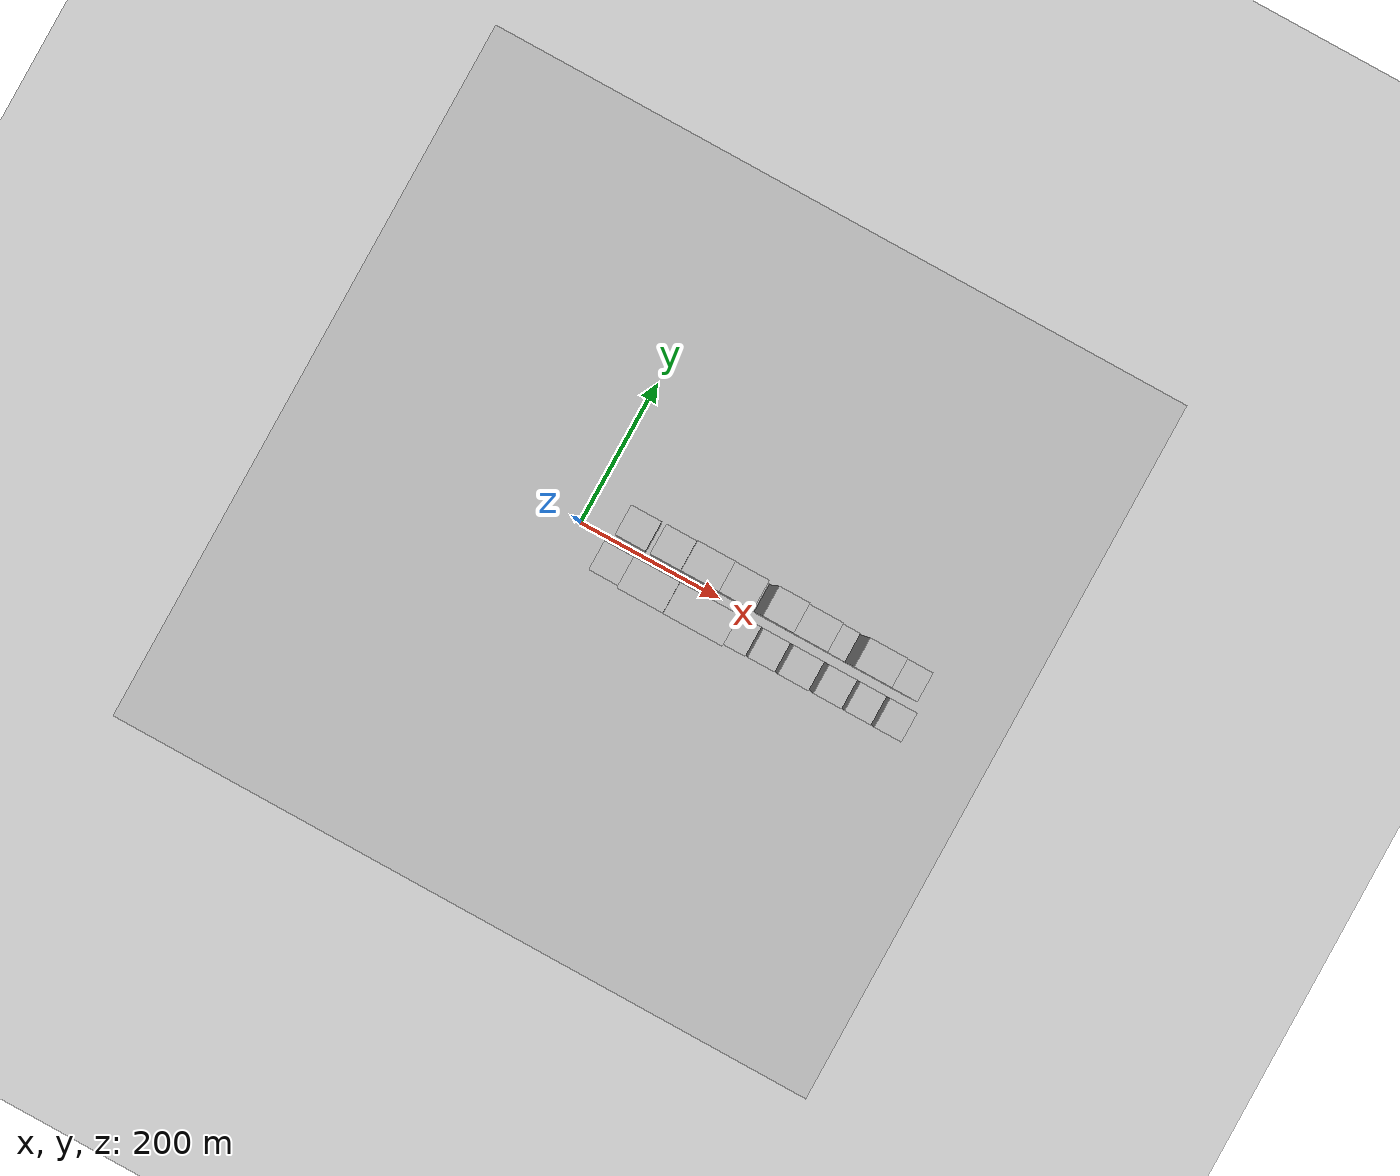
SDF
<?xml version="1.0" encoding="utf-8"?>

<sdf version="1.6">

   <world name="default">

      <gui fullscreen="0">

         <camera name="user_camera">

            <pose>-15 0 4.57585 0 0 0</pose>

            <view_controller>orbit</view_controller>

         </camera>

      </gui>

      <scene>

         <sky>

           <clouds>

             <speed>12</speed>

           </clouds>

         </sky>

         <ambient>0.4 0.4 0.4 1</ambient>

         <background>0.7 0.7 0.7 1</background>

         <shadows>1</shadows>

      </scene>

      <gravity>0 0 -9.8066</gravity>

      <magnetic_field>6e-06 2.3e-05 -4.2e-05</magnetic_field>

      <physics default="0" name="default_physics" type="ode">

         <ode>

            <solver>

               <type>quick</type>

               <iters>10</iters>

               <sor>1.0</sor>

               <use_dynamic_moi_rescaling>0</use_dynamic_moi_rescaling>

            </solver>

            <constraints>

               <cfm>0</cfm>

               <erp>0.2</erp>

               <contact_max_correcting_vel>100</contact_max_correcting_vel>

               <contact_surface_layer>0.001</contact_surface_layer>

            </constraints>

         </ode>

         <max_step_size>0.004</max_step_size>

         <real_time_factor>1</real_time_factor>

         <real_time_update_rate>250</real_time_update_rate>

      </physics>

      <light name="sun" type="directional">

         <cast_shadows>1</cast_shadows>

         <pose>0 0 10 0 0 0</pose>

         <diffuse>0.8 0.8 0.8 1</diffuse>

         <specular>0.2 0.2 0.2 1</specular>

         <attenuation>

            <range>1000</range>

            <constant>0.9</constant>

            <linear>0.01</linear>

            <quadratic>0.001</quadratic>

         </attenuation>

         <direction>-0.5 0.1 -0.9</direction>

      </light>

      <include>

         <name>ground_plane_1</name>

         <uri>model://HANNAS_ground_plane</uri>

         <pose>0 0 0  0 0 0</pose>

      </include>

      <include>

         <name>ground_plane_2</name>

         <uri>model://HANNAS_ground_plane</uri>

         <pose>100 0 0  0 0 0</pose>

      </include>

      <model name="building_1">

         <static>1</static>

         <pose frame="">69.5498 26.0000 0 0.000000 0.000000 1.570796</pose>

         <link name="link">

            <pose frame="">0 0 58.50 0 0 0</pose>

            <collision name="collision">

               <geometry>

                  <box>

                     <size>40.0000 41.0997 117.0000</size>

                  </box>

               </geometry>

               <max_contacts>10</max_contacts>

               <surface>

                  <contact>

                     <ode/>

                  </contact>

                  <bounce/>

                  <friction>

                     <torsional>

                        <ode/>

                     </torsional>

                     <ode/>

                  </friction>

               </surface>

            </collision>

            <visual name="visual">

               <cast_shadows>0</cast_shadows>

               <geometry>

                  <box>

                     <size>40.0000 41.0997 117.0000</size>

                  </box>

               </geometry>

               <material>

                  <script>

                     <uri>model://HANNAS_wall/materials/scripts</uri>

                     <uri>model://HANNAS_wall/materials/textures</uri>

                     <name>vrc/HANNAS_wall</name>

                  </script>

               </material>

            </visual>

            <self_collide>0</self_collide>

            <enable_wind>0</enable_wind>

            <kinematic>0</kinematic>

         </link>

      </model>

      <model name="building_2">

         <static>1</static>

         <pose frame="">116.6021 26.0000 0 0.000000 0.000000 1.570796</pose>

         <link name="link">

            <pose frame="">0 0 61.50 0 0 0</pose>

            <collision name="collision">

               <geometry>

                  <box>

                     <size>40.0000 41.0049 123.0000</size>

                  </box>

               </geometry>

               <max_contacts>10</max_contacts>

               <surface>

                  <contact>

                     <ode/>

                  </contact>

                  <bounce/>

                  <friction>

                     <torsional>

                        <ode/>

                     </torsional>

                     <ode/>

                  </friction>

               </surface>

            </collision>

            <visual name="visual">

               <cast_shadows>0</cast_shadows>

               <geometry>

                  <box>

                     <size>40.0000 41.0049 123.0000</size>

                  </box>

               </geometry>

               <material>

                  <script>

                     <uri>model://HANNAS_wall/materials/scripts</uri>

                     <uri>model://HANNAS_wall/materials/textures</uri>

                     <name>vrc/HANNAS_wall</name>

                  </script>

               </material>

            </visual>

            <self_collide>0</self_collide>

            <enable_wind>0</enable_wind>

            <kinematic>0</kinematic>

         </link>

      </model>

      <model name="building_3">

         <static>1</static>

         <pose frame="">162.0072 26.0000 0 0.000000 0.000000 1.570796</pose>

         <link name="link">

            <pose frame="">0 0 73.50 0 0 0</pose>

            <collision name="collision">

               <geometry>

                  <box>

                     <size>40.0000 49.8053 147.0000</size>

                  </box>

               </geometry>

               <max_contacts>10</max_contacts>

               <surface>

                  <contact>

                     <ode/>

                  </contact>

                  <bounce/>

                  <friction>

                     <torsional>

                        <ode/>

                     </torsional>

                     <ode/>

                  </friction>

               </surface>

            </collision>

            <visual name="visual">

               <cast_shadows>0</cast_shadows>

               <geometry>

                  <box>

                     <size>40.0000 49.8053 147.0000</size>

                  </box>

               </geometry>

               <material>

                  <script>

                     <uri>model://HANNAS_wall/materials/scripts</uri>

                     <uri>model://HANNAS_wall/materials/textures</uri>

                     <name>vrc/HANNAS_wall</name>

                  </script>

               </material>

            </visual>

            <self_collide>0</self_collide>

            <enable_wind>0</enable_wind>

            <kinematic>0</kinematic>

         </link>

      </model>

      <model name="building_4">

         <static>1</static>

         <pose frame="">209.6434 26.0000 0 0.000000 0.000000 1.570796</pose>

         <link name="link">

            <pose frame="">0 0 69.00 0 0 0</pose>

            <collision name="collision">

               <geometry>

                  <box>

                     <size>40.0000 45.4671 138.0000</size>

                  </box>

               </geometry>

               <max_contacts>10</max_contacts>

               <surface>

                  <contact>

                     <ode/>

                  </contact>

                  <bounce/>

                  <friction>

                     <torsional>

                        <ode/>

                     </torsional>

                     <ode/>

                  </friction>

               </surface>

            </collision>

            <visual name="visual">

               <cast_shadows>0</cast_shadows>

               <geometry>

                  <box>

                     <size>40.0000 45.4671 138.0000</size>

                  </box>

               </geometry>

               <material>

                  <script>

                     <uri>model://HANNAS_wall/materials/scripts</uri>

                     <uri>model://HANNAS_wall/materials/textures</uri>

                     <name>vrc/HANNAS_wall</name>

                  </script>

               </material>

            </visual>

            <self_collide>0</self_collide>

            <enable_wind>0</enable_wind>

            <kinematic>0</kinematic>

         </link>

      </model>

      <model name="building_5">

         <static>1</static>

         <pose frame="">237.8168 26.0000 0 0.000000 0.000000 1.570796</pose>

         <link name="link">

            <pose frame="">0 0 13.50 0 0 0</pose>

            <collision name="collision">

               <geometry>

                  <box>

                     <size>40.0000 10.8796 27.0000</size>

                  </box>

               </geometry>

               <max_contacts>10</max_contacts>

               <surface>

                  <contact>

                     <ode/>

                  </contact>

                  <bounce/>

                  <friction>

                     <torsional>

                        <ode/>

                     </torsional>

                     <ode/>

                  </friction>

               </surface>

            </collision>

            <visual name="visual">

               <cast_shadows>0</cast_shadows>

               <geometry>

                  <box>

                     <size>40.0000 10.8796 27.0000</size>

                  </box>

               </geometry>

               <material>

                  <script>

                     <uri>model://HANNAS_wall/materials/scripts</uri>

                     <uri>model://HANNAS_wall/materials/textures</uri>

                     <name>vrc/HANNAS_wall</name>

                  </script>

               </material>

            </visual>

            <self_collide>0</self_collide>

            <enable_wind>0</enable_wind>

            <kinematic>0</kinematic>

         </link>

      </model>

      <model name="building_6">

         <static>1</static>

         <pose frame="">266.7117 26.0000 0 0.000000 0.000000 1.570796</pose>

         <link name="link">

            <pose frame="">0 0 66.00 0 0 0</pose>

            <collision name="collision">

               <geometry>

                  <box>

                     <size>40.0000 40.9102 132.0000</size>

                  </box>

               </geometry>

               <max_contacts>10</max_contacts>

               <surface>

                  <contact>

                     <ode/>

                  </contact>

                  <bounce/>

                  <friction>

                     <torsional>

                        <ode/>

                     </torsional>

                     <ode/>

                  </friction>

               </surface>

            </collision>

            <visual name="visual">

               <cast_shadows>0</cast_shadows>

               <geometry>

                  <box>

                     <size>40.0000 40.9102 132.0000</size>

                  </box>

               </geometry>

               <material>

                  <script>

                     <uri>model://HANNAS_wall/materials/scripts</uri>

                     <uri>model://HANNAS_wall/materials/textures</uri>

                     <name>vrc/HANNAS_wall</name>

                  </script>

               </material>

            </visual>

            <self_collide>0</self_collide>

            <enable_wind>0</enable_wind>

            <kinematic>0</kinematic>

         </link>

      </model>

      <model name="building_7">

         <static>1</static>

         <pose frame="">315.5100 26.0000 0 0.000000 0.000000 1.570796</pose>

         <link name="link">

            <pose frame="">0 0 45.00 0 0 0</pose>

            <collision name="collision">

               <geometry>

                  <box>

                     <size>40.0000 46.6864 90.0000</size>

                  </box>

               </geometry>

               <max_contacts>10</max_contacts>

               <surface>

                  <contact>

                     <ode/>

                  </contact>

                  <bounce/>

                  <friction>

                     <torsional>

                        <ode/>

                     </torsional>

                     <ode/>

                  </friction>

               </surface>

            </collision>

            <visual name="visual">

               <cast_shadows>0</cast_shadows>

               <geometry>

                  <box>

                     <size>40.0000 46.6864 90.0000</size>

                  </box>

               </geometry>

               <material>

                  <script>

                     <uri>model://HANNAS_wall/materials/scripts</uri>

                     <uri>model://HANNAS_wall/materials/textures</uri>

                     <name>vrc/HANNAS_wall</name>

                  </script>

               </material>

            </visual>

            <self_collide>0</self_collide>

            <enable_wind>0</enable_wind>

            <kinematic>0</kinematic>

         </link>

      </model>

      <model name="building_8">

         <static>1</static>

         <pose frame="">353.8783 26.0000 0 0.000000 0.000000 1.570796</pose>

         <link name="link">

            <pose frame="">0 0 25.50 0 0 0</pose>

            <collision name="collision">

               <geometry>

                  <box>

                     <size>40.0000 30.0503 51.0000</size>

                  </box>

               </geometry>

               <max_contacts>10</max_contacts>

               <surface>

                  <contact>

                     <ode/>

                  </contact>

                  <bounce/>

                  <friction>

                     <torsional>

                        <ode/>

                     </torsional>

                     <ode/>

                  </friction>

               </surface>

            </collision>

            <visual name="visual">

               <cast_shadows>0</cast_shadows>

               <geometry>

                  <box>

                     <size>40.0000 30.0503 51.0000</size>

                  </box>

               </geometry>

               <material>

                  <script>

                     <uri>model://HANNAS_wall/materials/scripts</uri>

                     <uri>model://HANNAS_wall/materials/textures</uri>

                     <name>vrc/HANNAS_wall</name>

                  </script>

               </material>

            </visual>

            <self_collide>0</self_collide>

            <enable_wind>0</enable_wind>

            <kinematic>0</kinematic>

         </link>

      </model>

      <model name="building_9">

         <static>1</static>

         <pose frame="">401.5745 26.0000 0 0.000000 0.000000 1.570796</pose>

         <link name="link">

            <pose frame="">0 0 43.50 0 0 0</pose>

            <collision name="collision">

               <geometry>

                  <box>

                     <size>40.0000 51.3420 87.0000</size>

                  </box>

               </geometry>

               <max_contacts>10</max_contacts>

               <surface>

                  <contact>

                     <ode/>

                  </contact>

                  <bounce/>

                  <friction>

                     <torsional>

                        <ode/>

                     </torsional>

                     <ode/>

                  </friction>

               </surface>

            </collision>

            <visual name="visual">

               <cast_shadows>0</cast_shadows>

               <geometry>

                  <box>

                     <size>40.0000 51.3420 87.0000</size>

                  </box>

               </geometry>

               <material>

                  <script>

                     <uri>model://HANNAS_wall/materials/scripts</uri>

                     <uri>model://HANNAS_wall/materials/textures</uri>

                     <name>vrc/HANNAS_wall</name>

                  </script>

               </material>

            </visual>

            <self_collide>0</self_collide>

            <enable_wind>0</enable_wind>

            <kinematic>0</kinematic>

         </link>

      </model>

      <model name="building_10">

         <static>1</static>

         <pose frame="">446.7291 26.0000 0 0.000000 0.000000 1.570796</pose>

         <link name="link">

            <pose frame="">0 0 34.50 0 0 0</pose>

            <collision name="collision">

               <geometry>

                  <box>

                     <size>40.0000 38.9672 69.0000</size>

                  </box>

               </geometry>

               <max_contacts>10</max_contacts>

               <surface>

                  <contact>

                     <ode/>

                  </contact>

                  <bounce/>

                  <friction>

                     <torsional>

                        <ode/>

                     </torsional>

                     <ode/>

                  </friction>

               </surface>

            </collision>

            <visual name="visual">

               <cast_shadows>0</cast_shadows>

               <geometry>

                  <box>

                     <size>40.0000 38.9672 69.0000</size>

                  </box>

               </geometry>

               <material>

                  <script>

                     <uri>model://HANNAS_wall/materials/scripts</uri>

                     <uri>model://HANNAS_wall/materials/textures</uri>

                     <name>vrc/HANNAS_wall</name>

                  </script>

               </material>

            </visual>

            <self_collide>0</self_collide>

            <enable_wind>0</enable_wind>

            <kinematic>0</kinematic>

         </link>

      </model>

      <model name="building_11">

         <static>1</static>

         <pose frame="">61.0648 -26.0000 0 0.000000 0.000000 1.570796</pose>

         <link name="link">

            <pose frame="">0 0 36.00 0 0 0</pose>

            <collision name="collision">

               <geometry>

                  <box>

                     <size>40.0000 42.1297 72.0000</size>

                  </box>

               </geometry>

               <max_contacts>10</max_contacts>

               <surface>

                  <contact>

                     <ode/>

                  </contact>

                  <bounce/>

                  <friction>

                     <torsional>

                        <ode/>

                     </torsional>

                     <ode/>

                  </friction>

               </surface>

            </collision>

            <visual name="visual">

               <cast_shadows>0</cast_shadows>

               <geometry>

                  <box>

                     <size>40.0000 42.1297 72.0000</size>

                  </box>

               </geometry>

               <material>

                  <script>

                     <uri>model://HANNAS_wall/materials/scripts</uri>

                     <uri>model://HANNAS_wall/materials/textures</uri>

                     <name>vrc/HANNAS_wall</name>

                  </script>

               </material>

            </visual>

            <self_collide>0</self_collide>

            <enable_wind>0</enable_wind>

            <kinematic>0</kinematic>

         </link>

      </model>

      <model name="building_12">

         <static>1</static>

         <pose frame="">111.7779 -26.0000 0 0.000000 0.000000 1.570796</pose>

         <link name="link">

            <pose frame="">0 0 93.00 0 0 0</pose>

            <collision name="collision">

               <geometry>

                  <box>

                     <size>40.0000 59.2964 186.0000</size>

                  </box>

               </geometry>

               <max_contacts>10</max_contacts>

               <surface>

                  <contact>

                     <ode/>

                  </contact>

                  <bounce/>

                  <friction>

                     <torsional>

                        <ode/>

                     </torsional>

                     <ode/>

                  </friction>

               </surface>

            </collision>

            <visual name="visual">

               <cast_shadows>0</cast_shadows>

               <geometry>

                  <box>

                     <size>40.0000 59.2964 186.0000</size>

                  </box>

               </geometry>

               <material>

                  <script>

                     <uri>model://HANNAS_wall/materials/scripts</uri>

                     <uri>model://HANNAS_wall/materials/textures</uri>

                     <name>vrc/HANNAS_wall</name>

                  </script>

               </material>

            </visual>

            <self_collide>0</self_collide>

            <enable_wind>0</enable_wind>

            <kinematic>0</kinematic>

         </link>

      </model>

      <model name="building_13">

         <static>1</static>

         <pose frame="">179.1467 -26.0000 0 0.000000 0.000000 1.570796</pose>

         <link name="link">

            <pose frame="">0 0 99.00 0 0 0</pose>

            <collision name="collision">

               <geometry>

                  <box>

                     <size>40.0000 75.4413 198.0000</size>

                  </box>

               </geometry>

               <max_contacts>10</max_contacts>

               <surface>

                  <contact>

                     <ode/>

                  </contact>

                  <bounce/>

                  <friction>

                     <torsional>

                        <ode/>

                     </torsional>

                     <ode/>

                  </friction>

               </surface>

            </collision>

            <visual name="visual">

               <cast_shadows>0</cast_shadows>

               <geometry>

                  <box>

                     <size>40.0000 75.4413 198.0000</size>

                  </box>

               </geometry>

               <material>

                  <script>

                     <uri>model://HANNAS_wall/materials/scripts</uri>

                     <uri>model://HANNAS_wall/materials/textures</uri>

                     <name>vrc/HANNAS_wall</name>

                  </script>

               </material>

            </visual>

            <self_collide>0</self_collide>

            <enable_wind>0</enable_wind>

            <kinematic>0</kinematic>

         </link>

      </model>

      <model name="building_14">

         <static>1</static>

         <pose frame="">235.4819 -26.0000 0 0.000000 0.000000 1.570796</pose>

         <link name="link">

            <pose frame="">0 0 49.50 0 0 0</pose>

            <collision name="collision">

               <geometry>

                  <box>

                     <size>40.0000 37.2291 99.0000</size>

                  </box>

               </geometry>

               <max_contacts>10</max_contacts>

               <surface>

                  <contact>

                     <ode/>

                  </contact>

                  <bounce/>

                  <friction>

                     <torsional>

                        <ode/>

                     </torsional>

                     <ode/>

                  </friction>

               </surface>

            </collision>

            <visual name="visual">

               <cast_shadows>0</cast_shadows>

               <geometry>

                  <box>

                     <size>40.0000 37.2291 99.0000</size>

                  </box>

               </geometry>

               <material>

                  <script>

                     <uri>model://HANNAS_wall/materials/scripts</uri>

                     <uri>model://HANNAS_wall/materials/textures</uri>

                     <name>vrc/HANNAS_wall</name>

                  </script>

               </material>

            </visual>

            <self_collide>0</self_collide>

            <enable_wind>0</enable_wind>

            <kinematic>0</kinematic>

         </link>

      </model>

      <model name="building_15">

         <static>1</static>

         <pose frame="">278.7319 -26.0000 0 0.000000 0.000000 1.570796</pose>

         <link name="link">

            <pose frame="">0 0 34.50 0 0 0</pose>

            <collision name="collision">

               <geometry>

                  <box>

                     <size>40.0000 37.2709 69.0000</size>

                  </box>

               </geometry>

               <max_contacts>10</max_contacts>

               <surface>

                  <contact>

                     <ode/>

                  </contact>

                  <bounce/>

                  <friction>

                     <torsional>

                        <ode/>

                     </torsional>

                     <ode/>

                  </friction>

               </surface>

            </collision>

            <visual name="visual">

               <cast_shadows>0</cast_shadows>

               <geometry>

                  <box>

                     <size>40.0000 37.2709 69.0000</size>

                  </box>

               </geometry>

               <material>

                  <script>

                     <uri>model://HANNAS_wall/materials/scripts</uri>

                     <uri>model://HANNAS_wall/materials/textures</uri>

                     <name>vrc/HANNAS_wall</name>

                  </script>

               </material>

            </visual>

            <self_collide>0</self_collide>

            <enable_wind>0</enable_wind>

            <kinematic>0</kinematic>

         </link>

      </model>

      <model name="building_16">

         <static>1</static>

         <pose frame="">322.4038 -26.0000 0 0.000000 0.000000 1.570796</pose>

         <link name="link">

            <pose frame="">0 0 37.50 0 0 0</pose>

            <collision name="collision">

               <geometry>

                  <box>

                     <size>40.0000 42.0729 75.0000</size>

                  </box>

               </geometry>

               <max_contacts>10</max_contacts>

               <surface>

                  <contact>

                     <ode/>

                  </contact>

                  <bounce/>

                  <friction>

                     <torsional>

                        <ode/>

                     </torsional>

                     <ode/>

                  </friction>

               </surface>

            </collision>

            <visual name="visual">

               <cast_shadows>0</cast_shadows>

               <geometry>

                  <box>

                     <size>40.0000 42.0729 75.0000</size>

                  </box>

               </geometry>

               <material>

                  <script>

                     <uri>model://HANNAS_wall/materials/scripts</uri>

                     <uri>model://HANNAS_wall/materials/textures</uri>

                     <name>vrc/HANNAS_wall</name>

                  </script>

               </material>

            </visual>

            <self_collide>0</self_collide>

            <enable_wind>0</enable_wind>

            <kinematic>0</kinematic>

         </link>

      </model>

      <model name="building_17">

         <static>1</static>

         <pose frame="">370.9581 -26.0000 0 0.000000 0.000000 1.570796</pose>

         <link name="link">

            <pose frame="">0 0 33.00 0 0 0</pose>

            <collision name="collision">

               <geometry>

                  <box>

                     <size>40.0000 39.0358 66.0000</size>

                  </box>

               </geometry>

               <max_contacts>10</max_contacts>

               <surface>

                  <contact>

                     <ode/>

                  </contact>

                  <bounce/>

                  <friction>

                     <torsional>

                        <ode/>

                     </torsional>

                     <ode/>

                  </friction>

               </surface>

            </collision>

            <visual name="visual">

               <cast_shadows>0</cast_shadows>

               <geometry>

                  <box>

                     <size>40.0000 39.0358 66.0000</size>

                  </box>

               </geometry>

               <material>

                  <script>

                     <uri>model://HANNAS_wall/materials/scripts</uri>

                     <uri>model://HANNAS_wall/materials/textures</uri>

                     <name>vrc/HANNAS_wall</name>

                  </script>

               </material>

            </visual>

            <self_collide>0</self_collide>

            <enable_wind>0</enable_wind>

            <kinematic>0</kinematic>

         </link>

      </model>

      <model name="building_18">

         <static>1</static>

         <pose frame="">413.6311 -26.0000 0 0.000000 0.000000 1.570796</pose>

         <link name="link">

            <pose frame="">0 0 31.50 0 0 0</pose>

            <collision name="collision">

               <geometry>

                  <box>

                     <size>40.0000 36.3102 63.0000</size>

                  </box>

               </geometry>

               <max_contacts>10</max_contacts>

               <surface>

                  <contact>

                     <ode/>

                  </contact>

                  <bounce/>

                  <friction>

                     <torsional>

                        <ode/>

                     </torsional>

                     <ode/>

                  </friction>

               </surface>

            </collision>

            <visual name="visual">

               <cast_shadows>0</cast_shadows>

               <geometry>

                  <box>

                     <size>40.0000 36.3102 63.0000</size>

                  </box>

               </geometry>

               <material>

                  <script>

                     <uri>model://HANNAS_wall/materials/scripts</uri>

                     <uri>model://HANNAS_wall/materials/textures</uri>

                     <name>vrc/HANNAS_wall</name>

                  </script>

               </material>

            </visual>

            <self_collide>0</self_collide>

            <enable_wind>0</enable_wind>

            <kinematic>0</kinematic>

         </link>

      </model>

      <model name="building_19">

         <static>1</static>

         <pose frame="">453.4591 -26.0000 0 0.000000 0.000000 1.570796</pose>

         <link name="link">

            <pose frame="">0 0 36.00 0 0 0</pose>

            <collision name="collision">

               <geometry>

                  <box>

                     <size>40.0000 37.3458 72.0000</size>

                  </box>

               </geometry>

               <max_contacts>10</max_contacts>

               <surface>

                  <contact>

                     <ode/>

                  </contact>

                  <bounce/>

                  <friction>

                     <torsional>

                        <ode/>

                     </torsional>

                     <ode/>

                  </friction>

               </surface>

            </collision>

            <visual name="visual">

               <cast_shadows>0</cast_shadows>

               <geometry>

                  <box>

                     <size>40.0000 37.3458 72.0000</size>

                  </box>

               </geometry>

               <material>

                  <script>

                     <uri>model://HANNAS_wall/materials/scripts</uri>

                     <uri>model://HANNAS_wall/materials/textures</uri>

                     <name>vrc/HANNAS_wall</name>

                  </script>

               </material>

            </visual>

            <self_collide>0</self_collide>

            <enable_wind>0</enable_wind>

            <kinematic>0</kinematic>

         </link>

      </model>

   </world>

</sdf>

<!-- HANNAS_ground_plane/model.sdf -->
<sdf version="1.4">
<model name="HANNAS_ground_plane">
  <static>true</static>
    <link name="link">
      <collision name="collision">
        <geometry>
          <plane>
            <normal>0 0 1</normal>
            <size>1000 1000</size>
          </plane>
        </geometry>
        <surface>
          <friction>
            <ode>
              <mu>100</mu>
              <mu2>50</mu2>
            </ode>
          </friction>
        </surface>
      </collision>
      <visual name="visual">
        <cast_shadows>false</cast_shadows>
        <geometry>
          <plane>
            <normal>0 0 1</normal>
            <size>1000 1000</size>
          </plane>
        </geometry>
        <material>
          <script>
            <uri>model://HANNAS_ground_plane/materials/scripts/HANNAS_ground_plane.material</uri>
	    <uri>model://HANNAS_ground_plane/materials/textures</uri>
            <name>HANNASGroundPlane/Image</name>
          </script>
        </material>
      </visual>
    </link>
  </model>
</sdf>
